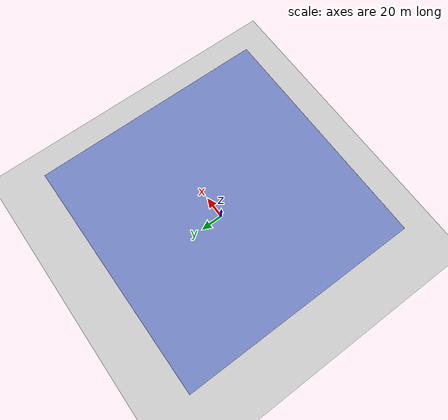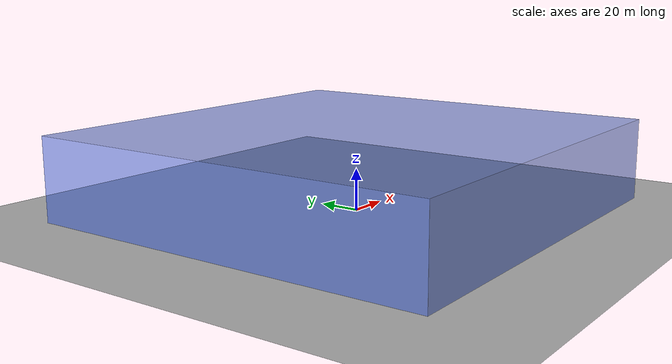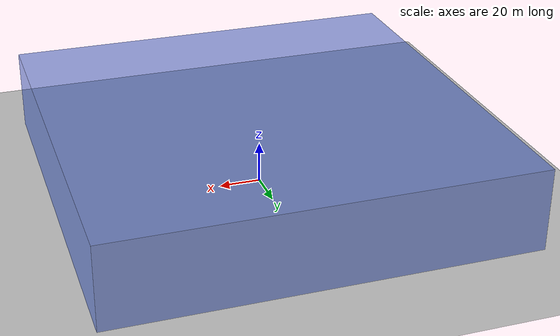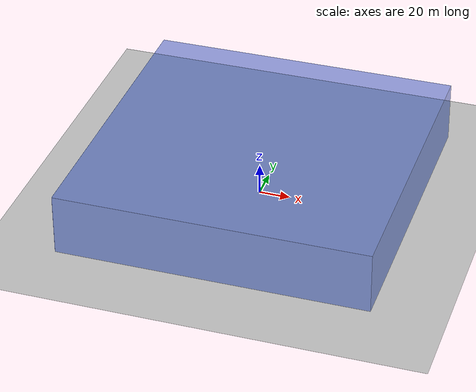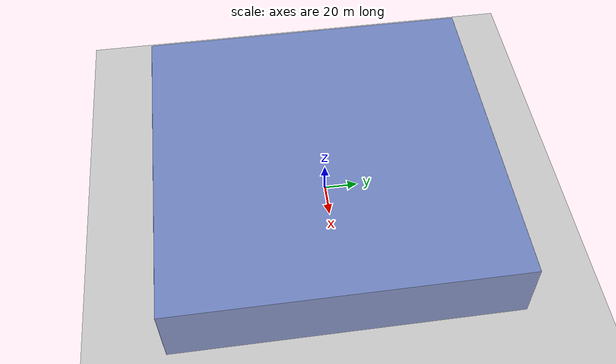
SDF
<sdf version="1.5">
    <world name="default">
        <gui>
            <camera name="user_camera">
                <pose>10 11 10 0 0 -2.356</pose>
            </camera>
        </gui>
        <scene>
            <ambient> 0.25 0.3 0.5 1</ambient>
            <grid>false</grid>
        </scene>
        <light type="directional" name="sun">
            <cast_shadows>true</cast_shadows>
            <pose>0 0 100 0 0 0</pose>
            <diffuse>0.8 0.8 0.8 1</diffuse>
            <specular>0.2 0.2 0.2 1</specular>
            <attenuation>
                <range>1000</range>
                <constant>0.9</constant>
                <linear>0.01</linear>
                <quadratic>0.001</quadratic>
            </attenuation>
            <direction>-0.5 0.1 -0.9</direction>
        </light>
    <model name="ground_plane">
        <static>true</static>
        <link name="link">
            <collision name="collision">
                <geometry>
                    <plane>
                        <normal>0 0 1</normal>
                        <size>200 200</size>
                    </plane>
                </geometry>
                <surface>
                    <contact>
                        <collide_bitmask>0xffff</collide_bitmask>
                    </contact>
                    <friction>
                        <ode>
                            <mu>100</mu>
                            <mu2>50</mu2>
                        </ode>
                    </friction>
                </surface>
            </collision>
            <visual name="visual">
                <cast_shadows>false</cast_shadows>
                <geometry>
                    <plane>
                        <normal>0 0 1</normal>
                        <size>200 200</size>
                    </plane>
                </geometry>
                <material>
                    <script>
                        <uri>file://media/materials/scripts/gazebo.material</uri>
                        <name>Gazebo/Grey</name>
                    </script>
                </material>
            </visual>
        </link>
        </model>
            <model name="ceiling_plane">
            <static>true</static>
            <pose>0 0 40 0 0 0</pose>
            <link name="link">
                <collision name="collision">
                    <geometry>
                        <box>
                            <size>200 200 .1</size>
                        </box>
                    </geometry>
                </collision>
                <visual name="visual">
                    <cast_shadows>false</cast_shadows>
                    <geometry>
                        <box>
                            <size>200 200 .1</size>
                        </box>
                    </geometry>
                    <material>
                        <script>
                            <uri>file://media/materials/scripts/gazebo.material</uri>
                            <name>Gazebo/BlueTransparent</name>
                        </script>
                    </material>
                </visual>
                <visual name="visual_sideA">
                    <pose>100.05 0 -20 0 0 0</pose>
                    <cast_shadows>false</cast_shadows>
                    <geometry>
                        <box>
                            <size>0.1 200 39.9</size>
                        </box>
                    </geometry>
                    <material>
                        <script>
                            <uri>file://media/materials/scripts/gazebo.material</uri>
                            <name>Gazebo/BlueTransparent</name>
                        </script>
                    </material>
                </visual>
                <visual name="visual_sideB">
                    <pose>-100.05 0 -20 0 0 0</pose>
                    <cast_shadows>false</cast_shadows>
                    <geometry>
                        <box>
                            <size>0.1 200 39.9</size>
                        </box>
                    </geometry>
                    <material>
                        <script>
                            <uri>file://media/materials/scripts/gazebo.material</uri>
                            <name>Gazebo/BlueTransparent</name>
                        </script>
                    </material>
                </visual>
                <visual name="visual_sideC">
                    <pose>0 100.05 -20 0 0 0</pose>
                    <cast_shadows>false</cast_shadows>
                    <geometry>
                        <box>
                            <size>200 0.1 39.9</size>
                        </box>
                    </geometry>
                    <material>
                        <script>
                            <uri>file://media/materials/scripts/gazebo.material</uri>
                            <name>Gazebo/BlueTransparent</name>
                        </script>
                    </material>
                </visual>
                <visual name="visual_sideD">
                    <pose>0 -100.05 -20 0 0 0</pose>
                    <cast_shadows>false</cast_shadows>
                    <geometry>
                        <box>
                            <size>200 0.1 39.9</size>
                        </box>
                    </geometry>
                    <material>
                        <script>
                            <uri>file://media/materials/scripts/gazebo.material</uri>
                            <name>Gazebo/BlueTransparent</name>
                        </script>
                    </material>
                </visual>
            </link>
        </model>
    </world>
</sdf>
